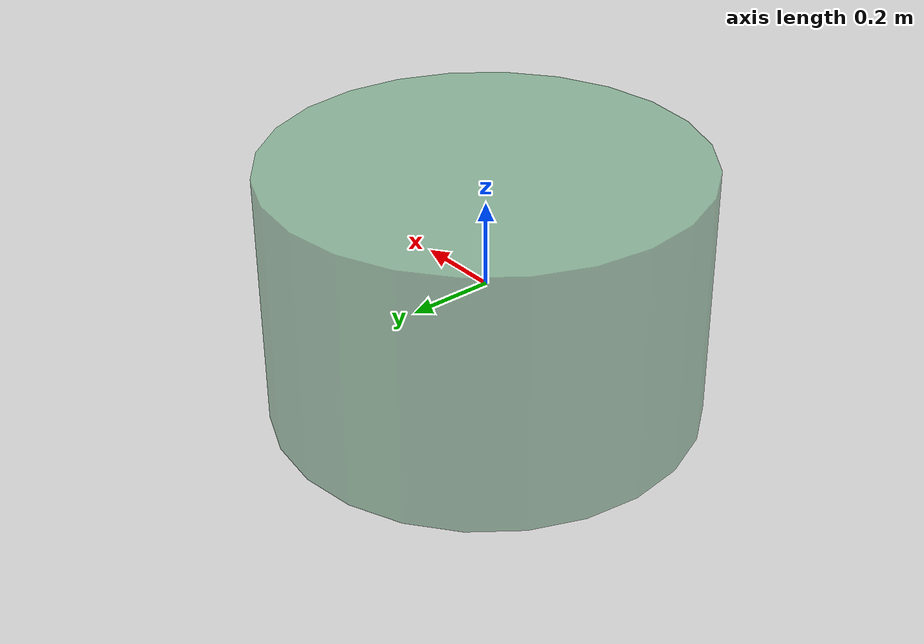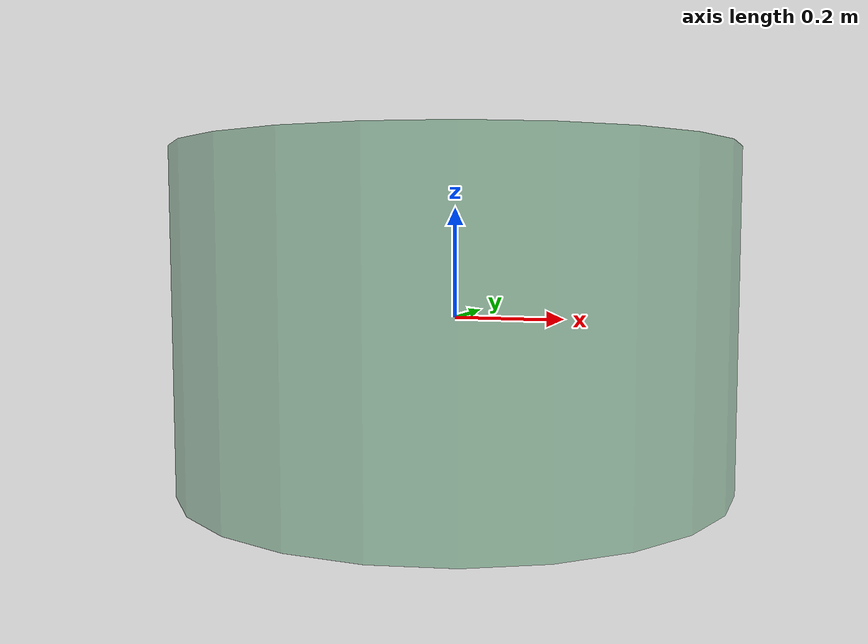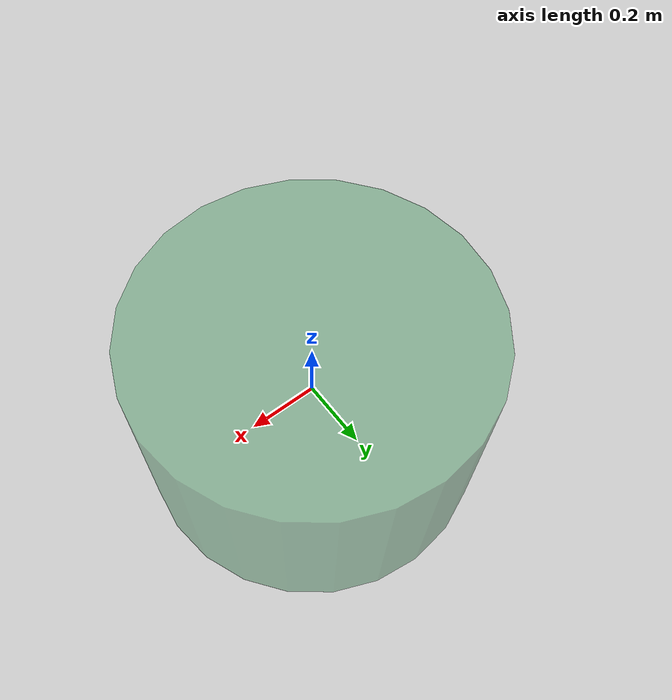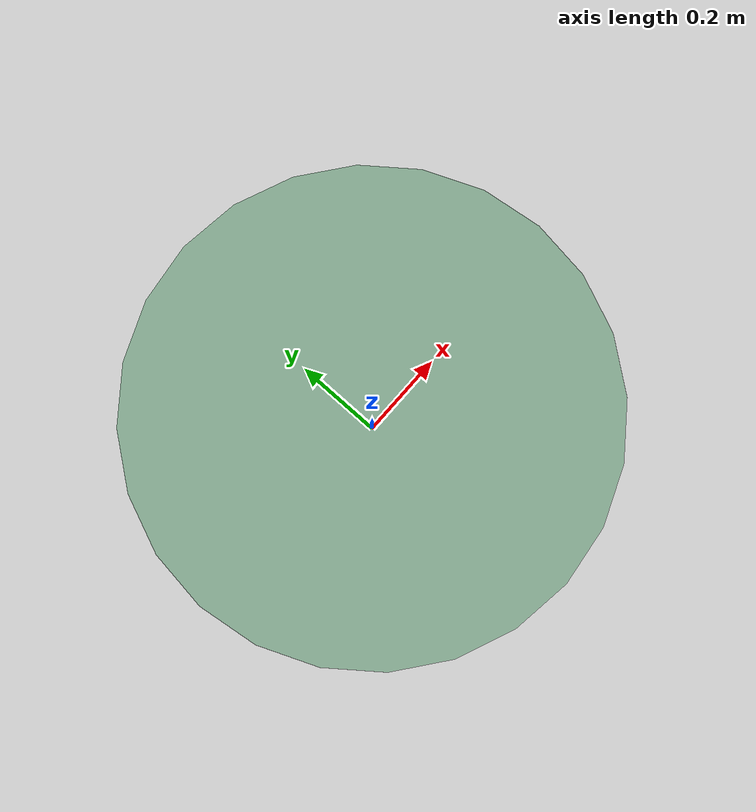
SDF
<?xml version='1.0'?>
<sdf version='1.6'>
  <model name='gas_cloud'>
    <link name='link'>
      <pose frame=''>0 0 0 0 -0 0</pose>
      <inertial>
        <mass>0.686235</mass>
        <inertia>
          <ixx>0.0698196</ixx>
          <ixy>0</ixy>
          <ixz>0</ixz>
          <iyy>0.0698196</iyy>
          <iyz>0</iyz>
          <izz>0.0857794</izz>
        </inertia>
        <pose frame=''>0 0 0 0 -0 0</pose>
      </inertial>
      <self_collide>0</self_collide>
      <kinematic>0</kinematic>
      <gravity>1</gravity>
      <visual name='visual'>
        <geometry>
          <cylinder>
            <radius>0.5</radius>
            <length>0.6</length>
          </cylinder>
        </geometry>
        <material>
          <script>
            <name>Gazebo/Grey</name>
            <uri>file://media/materials/scripts/gazebo.material</uri>
          </script>
          <ambient>0.3 0.6 0.4 1</ambient>
          <diffuse>0.3 0.3 0.3 1</diffuse>
          <specular>0.01 0.01 0.01 1</specular>
          <emissive>0 0 0 1</emissive>
          <shader type='vertex'>
            <normal_map>__default__</normal_map>
          </shader>
        </material>
        <pose frame=''>0 0 0 0 -0 0</pose>
        <cast_shadows>1</cast_shadows>
        <transparency>0.5</transparency>
      </visual>
    </link>
    <static>0</static>
    <allow_auto_disable>1</allow_auto_disable>
  </model>
</sdf>
